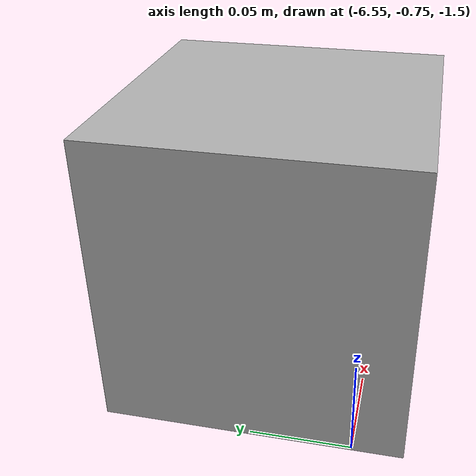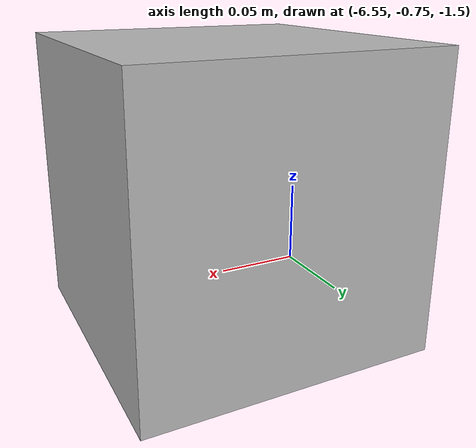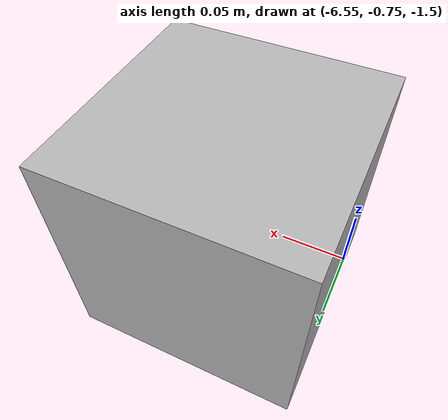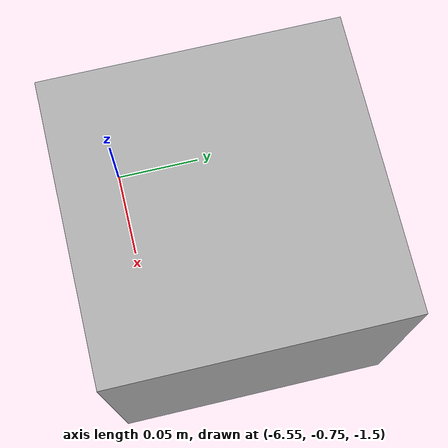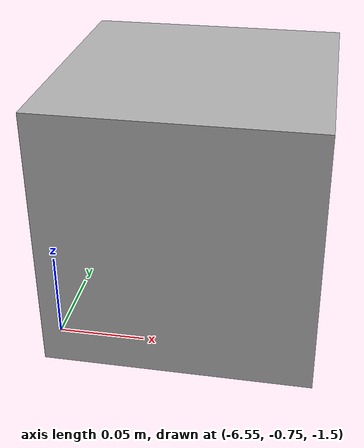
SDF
<sdf version="1.7">
 <world name="default">
  <model name="orthogonal_747_2.000.15_TS">
   <static>1</static>
   <link name="u_link_0_2_0">
    <inertial>
     <mass>1</mass>
     <inertia>
      <ixx>0.166667</ixx>
      <ixy>0</ixy>
      <ixz>0</ixz>
      <iyy>0.166667</iyy>
      <iyz>0</iyz>
      <izz>0.166667</izz>
     </inertia>
    </inertial>
    <pose>0 4.3 1.075 0 -0 0</pose>
    <visual name="visual_0">
     <laser_retro>337</laser_retro>
     <geometry><box><size>0.15 1e-06 0.15</size></box></geometry>
     <material>
      <script><name>Gazebo/Grey</name><uri>file://media/materials/scripts/gazebo.material</uri></script>
      <shader type="pixel"><normal_map>__default__</normal_map></shader>
      <ambient>0.678 0.498 0.659 1</ambient>
      <diffuse>0.7 0.7 0.7 1</diffuse>
      <specular>0.01 0.01 0.01 1</specular>
      <emissive>0 0 0 1</emissive>
     </material>
     <pose>0 -0.075 0 0 -0 0</pose>
     <transparency>1</transparency>
    </visual>
    <visual name="visual_1">
     <laser_retro>338</laser_retro>
     <geometry><box><size>0.15 1e-06 0.15</size></box></geometry>
     <material>
      <script><name>Gazebo/Grey</name><uri>file://media/materials/scripts/gazebo.material</uri></script>
      <shader type="pixel"><normal_map>__default__</normal_map></shader>
      <ambient>0.447 0.624 0.812 1</ambient>
      <diffuse>0.7 0.7 0.7 1</diffuse>
      <specular>0.01 0.01 0.01 1</specular>
      <emissive>0 0 0 1</emissive>
     </material>
     <pose>0 0.075 0 0 -0 0</pose>
     <transparency>1</transparency>
    </visual>
    <visual name="visual_2">
     <laser_retro>339</laser_retro>
     <geometry><box><size>0.15 0.15 1e-06</size></box></geometry>
     <material>
      <script><name>Gazebo/Grey</name><uri>file://media/materials/scripts/gazebo.material</uri></script>
      <shader type="pixel"><normal_map>__default__</normal_map></shader>
      <ambient>0.988 0.686 0.243 1</ambient>
      <diffuse>0.7 0.7 0.7 1</diffuse>
      <specular>0.01 0.01 0.01 1</specular>
      <emissive>0 0 0 1</emissive>
     </material>
     <pose>0 0 -0.075 0 -0 0</pose>
     <transparency>1</transparency>
    </visual>
    <visual name="visual_3">
     <laser_retro>340</laser_retro>
     <geometry><box><size>1e-06 0.15 0.15</size></box></geometry>
     <material>
      <script><name>Gazebo/Grey</name><uri>file://media/materials/scripts/gazebo.material</uri></script>
      <shader type="pixel"><normal_map>__default__</normal_map></shader>
      <ambient>0.988 0.914 0.31 1</ambient>
      <diffuse>0.7 0.7 0.7 1</diffuse>
      <specular>0.01 0.01 0.01 1</specular>
      <emissive>0 0 0 1</emissive>
     </material>
     <pose>0.075 0 0 0 -0 0</pose>
     <transparency>1</transparency>
    </visual>
    <visual name="visual_4">
     <laser_retro>341</laser_retro>
     <geometry><box><size>0.15 0.15 1e-06</size></box></geometry>
     <material>
      <script><name>Gazebo/Grey</name><uri>file://media/materials/scripts/gazebo.material</uri></script>
      <shader type="pixel"><normal_map>__default__</normal_map></shader>
      <ambient>0.937 0.161 0.161 1</ambient>
      <diffuse>0.7 0.7 0.7 1</diffuse>
      <specular>0.01 0.01 0.01 1</specular>
      <emissive>0 0 0 1</emissive>
     </material>
     <pose>0 0 0.075 0 -0 0</pose>
     <transparency>1</transparency>
    </visual>
    <visual name="visual_5">
     <laser_retro>342</laser_retro>
     <geometry><box><size>1e-06 0.15 0.15</size></box></geometry>
     <material>
      <script><name>Gazebo/Grey</name><uri>file://media/materials/scripts/gazebo.material</uri></script>
      <shader type="pixel"><normal_map>__default__</normal_map></shader>
      <ambient>0.541 0.886 0.204 1</ambient>
      <diffuse>0.7 0.7 0.7 1</diffuse>
      <specular>0.01 0.01 0.01 1</specular>
      <emissive>0 0 0 1</emissive>
     </material>
     <pose>-0.075 0 0 0 -0 0</pose>
     <transparency>1</transparency>
    </visual>
    <visual name="visual_texture">
     <geometry><box><size>0.149985 0.149985 0.149985</size></box></geometry>
     <material>
      <script>
       <uri>model://BASE_MODELS/simple_block_v2_textured/materials/scripts</uri>
       <uri>model://BASE_MODELS/simple_block_v2_textured/materials/textures</uri>
       <name>metal</name>
      </script>
     </material>
     <laser_retro>343</laser_retro>
    </visual>
    <collision name="collision">
     <geometry><box><size>0.15 0.15 0.15</size></box></geometry>
     <surface>
      <friction>
       <ode><mu>1</mu><mu2>1</mu2><fdir1>0 0 0</fdir1><slip1>0</slip1><slip2>0</slip2></ode>
       <torsional>
        <coefficient>1</coefficient>
        <patch_radius>0</patch_radius>
        <surface_radius>0</surface_radius>
        <use_patch_radius>1</use_patch_radius>
        <ode><slip>0</slip></ode>
       </torsional>
      </friction>
      <bounce><restitution_coefficient>0</restitution_coefficient><threshold>1e+06</threshold></bounce>
      <contact>
       <collide_without_contact>0</collide_without_contact>
       <collide_without_contact_bitmask>1</collide_without_contact_bitmask>
       <collide_bitmask>1</collide_bitmask>
       <ode>
        <soft_cfm>0</soft_cfm>
        <soft_erp>0.2</soft_erp>
        <kp>1e+13</kp>
        <kd>1</kd>
        <max_vel>0.01</max_vel>
        <min_depth>0</min_depth>
       </ode>
       <bullet>
        <split_impulse>1</split_impulse>
        <split_impulse_penetration_threshold>-0.01</split_impulse_penetration_threshold>
        <soft_cfm>0</soft_cfm>
        <soft_erp>0.2</soft_erp>
        <kp>1e+13</kp>
        <kd>1</kd>
       </bullet>
      </contact>
     </surface>
    </collision>
   </link>
   <pose>-6.47624 -5 -2.5 0 -0 0</pose>
  </model>
 </world>
</sdf>
